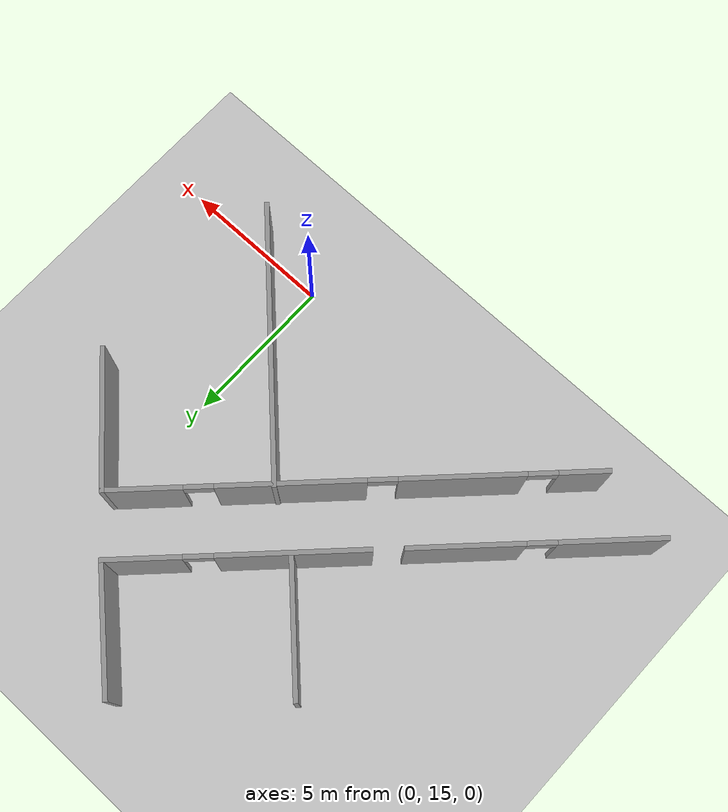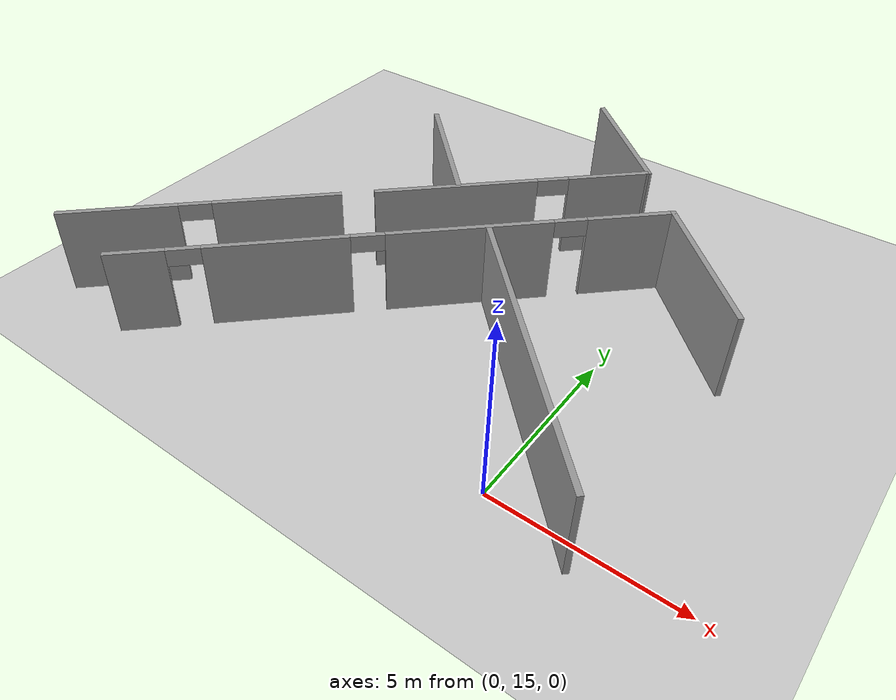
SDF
<sdf version="1.6">
 <world name="default">
  <model name="ground_plane">
   <static>1</static>
   <link name="link">
    <collision name="collision">
     <geometry><plane><normal>0 0 1</normal><size>100 100</size></plane></geometry>
     <surface>
      <contact><collide_bitmask>65535</collide_bitmask></contact>
      <friction><ode><mu>100</mu><mu2>50</mu2></ode></friction>
     </surface>
    </collision>
    <visual name="visual">
     <cast_shadows>0</cast_shadows>
     <geometry><plane><normal>0 0 1</normal><size>100 100</size></plane></geometry>
     <material>
      <script><uri>file://media/materials/scripts/gazebo.material</uri><name>Gazebo/Grey</name></script>
     </material>
    </visual>
   </link>
  </model>
  <model name="Level_1_with_doors">
   <link name="Wall_79">
    <pose>-10.3009 -3.61838 0 0 -0 0.785398</pose>
    <visual name="Wall_79_Visual_5">
     <pose>-0.78351 0 2.25 0 -0 0</pose>
     <geometry><box><size>0.9 0.15 0.5</size></box></geometry>
     <material>
      <script><uri>file://media/materials/scripts/gazebo.material</uri><name>Gazebo/Grey</name></script>
      <ambient>1 1 1 1</ambient>
      <shader type="pixel"/>
     </material>
     <meta><layer>0</layer></meta>
    </visual>
    <visual name="Wall_79_Visual_3">
     <pose>6.28016 0 1.25 0 -0 0</pose>
     <geometry><box><size>2.43968 0.15 2.5</size></box></geometry>
     <material>
      <script><uri>file://media/materials/scripts/gazebo.material</uri><name>Gazebo/Grey</name></script>
      <ambient>1 1 1 1</ambient>
      <shader type="pixel"/>
     </material>
     <meta><layer>0</layer></meta>
    </visual>
    <visual name="Wall_79_Visual_2">
     <pose>1.91341 0 1.25 0 -0 0</pose>
     <geometry><box><size>4.49383 0.15 2.5</size></box></geometry>
     <material>
      <script><uri>file://media/materials/scripts/gazebo.material</uri><name>Gazebo/Grey</name></script>
      <ambient>1 1 1 1</ambient>
      <shader type="pixel"/>
     </material>
     <meta><layer>0</layer></meta>
    </visual>
    <visual name="Wall_79_Visual_6">
     <pose>4.61032 0 2.25 0 -0 0</pose>
     <geometry><box><size>0.9 0.15 0.5</size></box></geometry>
     <material>
      <script><uri>file://media/materials/scripts/gazebo.material</uri><name>Gazebo/Grey</name></script>
      <ambient>1 1 1 1</ambient>
      <shader type="pixel"/>
     </material>
     <meta><layer>0</layer></meta>
    </visual>
    <visual name="Wall_79_Visual_1">
     <pose>-3.13297 0 1.25 0 -0 0</pose>
     <geometry><box><size>3.79891 0.15 2.5</size></box></geometry>
     <material>
      <script><uri>file://media/materials/scripts/gazebo.material</uri><name>Gazebo/Grey</name></script>
      <ambient>1 1 1 1</ambient>
      <shader type="pixel"/>
     </material>
     <meta><layer>0</layer></meta>
    </visual>
    <visual name="Wall_79_Visual_0">
     <pose>-6.71621 0 1.25 0 -0 0</pose>
     <geometry><box><size>1.56758 0.15 2.5</size></box></geometry>
     <material>
      <script><uri>file://media/materials/scripts/gazebo.material</uri><name>Gazebo/Grey</name></script>
      <ambient>1 1 1 1</ambient>
      <shader type="pixel"/>
     </material>
     <meta><layer>0</layer></meta>
    </visual>
    <visual name="Wall_79_Visual_4">
     <pose>-5.48242 0 2.25 0 -0 0</pose>
     <geometry><box><size>0.9 0.15 0.5</size></box></geometry>
     <material>
      <script><uri>file://media/materials/scripts/gazebo.material</uri><name>Gazebo/Grey</name></script>
      <ambient>1 1 1 1</ambient>
      <shader type="pixel"/>
     </material>
     <meta><layer>0</layer></meta>
    </visual>
    <collision name="Wall_79_Collision_0">
     <pose>-6.71621 0 1.25 0 -0 0</pose>
     <geometry><box><size>1.56758 0.15 2.5</size></box></geometry>
     <surface>
      <friction>
       <ode><mu>1</mu><mu2>1</mu2><fdir1>0 0 0</fdir1><slip1>0</slip1><slip2>0</slip2></ode>
       <torsional>
        <coefficient>1</coefficient>
        <patch_radius>0</patch_radius>
        <surface_radius>0</surface_radius>
        <use_patch_radius>1</use_patch_radius>
        <ode><slip>0</slip></ode>
       </torsional>
      </friction>
      <bounce><restitution_coefficient>0</restitution_coefficient><threshold>1e+06</threshold></bounce>
      <contact>
       <collide_without_contact>0</collide_without_contact>
       <collide_without_contact_bitmask>1</collide_without_contact_bitmask>
       <collide_bitmask>1</collide_bitmask>
       <ode>
        <soft_cfm>0</soft_cfm>
        <soft_erp>0.2</soft_erp>
        <kp>1e+13</kp>
        <kd>1</kd>
        <max_vel>0.01</max_vel>
        <min_depth>0</min_depth>
       </ode>
       <bullet>
        <split_impulse>1</split_impulse>
        <split_impulse_penetration_threshold>-0.01</split_impulse_penetration_threshold>
        <soft_cfm>0</soft_cfm>
        <soft_erp>0.2</soft_erp>
        <kp>1e+13</kp>
        <kd>1</kd>
       </bullet>
      </contact>
     </surface>
    </collision>
    <collision name="Wall_79_Collision_3">
     <pose>6.28016 0 1.25 0 -0 0</pose>
     <geometry><box><size>2.43968 0.15 2.5</size></box></geometry>
     <surface>
      <friction>
       <ode><mu>1</mu><mu2>1</mu2><fdir1>0 0 0</fdir1><slip1>0</slip1><slip2>0</slip2></ode>
       <torsional>
        <coefficient>1</coefficient>
        <patch_radius>0</patch_radius>
        <surface_radius>0</surface_radius>
        <use_patch_radius>1</use_patch_radius>
        <ode><slip>0</slip></ode>
       </torsional>
      </friction>
      <bounce><restitution_coefficient>0</restitution_coefficient><threshold>1e+06</threshold></bounce>
      <contact>
       <collide_without_contact>0</collide_without_contact>
       <collide_without_contact_bitmask>1</collide_without_contact_bitmask>
       <collide_bitmask>1</collide_bitmask>
       <ode>
        <soft_cfm>0</soft_cfm>
        <soft_erp>0.2</soft_erp>
        <kp>1e+13</kp>
        <kd>1</kd>
        <max_vel>0.01</max_vel>
        <min_depth>0</min_depth>
       </ode>
       <bullet>
        <split_impulse>1</split_impulse>
        <split_impulse_penetration_threshold>-0.01</split_impulse_penetration_threshold>
        <soft_cfm>0</soft_cfm>
        <soft_erp>0.2</soft_erp>
        <kp>1e+13</kp>
        <kd>1</kd>
       </bullet>
      </contact>
     </surface>
    </collision>
    <collision name="Wall_79_Collision_2">
     <pose>1.91341 0 1.25 0 -0 0</pose>
     <geometry><box><size>4.49383 0.15 2.5</size></box></geometry>
     <surface>
      <friction>
       <ode><mu>1</mu><mu2>1</mu2><fdir1>0 0 0</fdir1><slip1>0</slip1><slip2>0</slip2></ode>
       <torsional>
        <coefficient>1</coefficient>
        <patch_radius>0</patch_radius>
        <surface_radius>0</surface_radius>
        <use_patch_radius>1</use_patch_radius>
        <ode><slip>0</slip></ode>
       </torsional>
      </friction>
      <bounce><restitution_coefficient>0</restitution_coefficient><threshold>1e+06</threshold></bounce>
      <contact>
       <collide_without_contact>0</collide_without_contact>
       <collide_without_contact_bitmask>1</collide_without_contact_bitmask>
       <collide_bitmask>1</collide_bitmask>
       <ode>
        <soft_cfm>0</soft_cfm>
        <soft_erp>0.2</soft_erp>
        <kp>1e+13</kp>
        <kd>1</kd>
        <max_vel>0.01</max_vel>
        <min_depth>0</min_depth>
       </ode>
       <bullet>
        <split_impulse>1</split_impulse>
        <split_impulse_penetration_threshold>-0.01</split_impulse_penetration_threshold>
        <soft_cfm>0</soft_cfm>
        <soft_erp>0.2</soft_erp>
        <kp>1e+13</kp>
        <kd>1</kd>
       </bullet>
      </contact>
     </surface>
    </collision>
    <collision name="Wall_79_Collision_1">
     <pose>-3.13297 0 1.25 0 -0 0</pose>
     <geometry><box><size>3.79891 0.15 2.5</size></box></geometry>
     <surface>
      <friction>
       <ode><mu>1</mu><mu2>1</mu2><fdir1>0 0 0</fdir1><slip1>0</slip1><slip2>0</slip2></ode>
       <torsional>
        <coefficient>1</coefficient>
        <patch_radius>0</patch_radius>
        <surface_radius>0</surface_radius>
        <use_patch_radius>1</use_patch_radius>
        <ode><slip>0</slip></ode>
       </torsional>
      </friction>
      <bounce><restitution_coefficient>0</restitution_coefficient><threshold>1e+06</threshold></bounce>
      <contact>
       <collide_without_contact>0</collide_without_contact>
       <collide_without_contact_bitmask>1</collide_without_contact_bitmask>
       <collide_bitmask>1</collide_bitmask>
       <ode>
        <soft_cfm>0</soft_cfm>
        <soft_erp>0.2</soft_erp>
        <kp>1e+13</kp>
        <kd>1</kd>
        <max_vel>0.01</max_vel>
        <min_depth>0</min_depth>
       </ode>
       <bullet>
        <split_impulse>1</split_impulse>
        <split_impulse_penetration_threshold>-0.01</split_impulse_penetration_threshold>
        <soft_cfm>0</soft_cfm>
        <soft_erp>0.2</soft_erp>
        <kp>1e+13</kp>
        <kd>1</kd>
       </bullet>
      </contact>
     </surface>
    </collision>
    <collision name="Wall_79_Collision_4">
     <pose>-5.48242 0 2.25 0 -0 0</pose>
     <geometry><box><size>0.9 0.15 0.5</size></box></geometry>
     <surface>
      <friction>
       <ode><mu>1</mu><mu2>1</mu2><fdir1>0 0 0</fdir1><slip1>0</slip1><slip2>0</slip2></ode>
       <torsional>
        <coefficient>1</coefficient>
        <patch_radius>0</patch_radius>
        <surface_radius>0</surface_radius>
        <use_patch_radius>1</use_patch_radius>
        <ode><slip>0</slip></ode>
       </torsional>
      </friction>
      <bounce><restitution_coefficient>0</restitution_coefficient><threshold>1e+06</threshold></bounce>
      <contact>
       <collide_without_contact>0</collide_without_contact>
       <collide_without_contact_bitmask>1</collide_without_contact_bitmask>
       <collide_bitmask>1</collide_bitmask>
       <ode>
        <soft_cfm>0</soft_cfm>
        <soft_erp>0.2</soft_erp>
        <kp>1e+13</kp>
        <kd>1</kd>
        <max_vel>0.01</max_vel>
        <min_depth>0</min_depth>
       </ode>
       <bullet>
        <split_impulse>1</split_impulse>
        <split_impulse_penetration_threshold>-0.01</split_impulse_penetration_threshold>
        <soft_cfm>0</soft_cfm>
        <soft_erp>0.2</soft_erp>
        <kp>1e+13</kp>
        <kd>1</kd>
       </bullet>
      </contact>
     </surface>
    </collision>
    <collision name="Wall_79_Collision_6">
     <pose>4.61032 0 2.25 0 -0 0</pose>
     <geometry><box><size>0.9 0.15 0.5</size></box></geometry>
     <surface>
      <friction>
       <ode><mu>1</mu><mu2>1</mu2><fdir1>0 0 0</fdir1><slip1>0</slip1><slip2>0</slip2></ode>
       <torsional>
        <coefficient>1</coefficient>
        <patch_radius>0</patch_radius>
        <surface_radius>0</surface_radius>
        <use_patch_radius>1</use_patch_radius>
        <ode><slip>0</slip></ode>
       </torsional>
      </friction>
      <bounce><restitution_coefficient>0</restitution_coefficient><threshold>1e+06</threshold></bounce>
      <contact>
       <collide_without_contact>0</collide_without_contact>
       <collide_without_contact_bitmask>1</collide_without_contact_bitmask>
       <collide_bitmask>1</collide_bitmask>
       <ode>
        <soft_cfm>0</soft_cfm>
        <soft_erp>0.2</soft_erp>
        <kp>1e+13</kp>
        <kd>1</kd>
        <max_vel>0.01</max_vel>
        <min_depth>0</min_depth>
       </ode>
       <bullet>
        <split_impulse>1</split_impulse>
        <split_impulse_penetration_threshold>-0.01</split_impulse_penetration_threshold>
        <soft_cfm>0</soft_cfm>
        <soft_erp>0.2</soft_erp>
        <kp>1e+13</kp>
        <kd>1</kd>
       </bullet>
      </contact>
     </surface>
    </collision>
    <collision name="Wall_79_Collision_5">
     <pose>-0.78351 0 2.25 0 -0 0</pose>
     <geometry><box><size>0.9 0.15 0.5</size></box></geometry>
     <surface>
      <friction>
       <ode><mu>1</mu><mu2>1</mu2><fdir1>0 0 0</fdir1><slip1>0</slip1><slip2>0</slip2></ode>
       <torsional>
        <coefficient>1</coefficient>
        <patch_radius>0</patch_radius>
        <surface_radius>0</surface_radius>
        <use_patch_radius>1</use_patch_radius>
        <ode><slip>0</slip></ode>
       </torsional>
      </friction>
      <bounce><restitution_coefficient>0</restitution_coefficient><threshold>1e+06</threshold></bounce>
      <contact>
       <collide_without_contact>0</collide_without_contact>
       <collide_without_contact_bitmask>1</collide_without_contact_bitmask>
       <collide_bitmask>1</collide_bitmask>
       <ode>
        <soft_cfm>0</soft_cfm>
        <soft_erp>0.2</soft_erp>
        <kp>1e+13</kp>
        <kd>1</kd>
        <max_vel>0.01</max_vel>
        <min_depth>0</min_depth>
       </ode>
       <bullet>
        <split_impulse>1</split_impulse>
        <split_impulse_penetration_threshold>-0.01</split_impulse_penetration_threshold>
        <soft_cfm>0</soft_cfm>
        <soft_erp>0.2</soft_erp>
        <kp>1e+13</kp>
        <kd>1</kd>
       </bullet>
      </contact>
     </surface>
    </collision>
   </link>
   <link name="Wall_80">
    <pose>-3.5127 0.093925 0 0 0 -0.785398</pose>
    <visual name="Wall_80_Visual">
     <pose>0 0 1.25 0 -0 0</pose>
     <geometry><box><size>4.5 0.15 2.5</size></box></geometry>
     <material>
      <script><uri>file://media/materials/scripts/gazebo.material</uri><name>Gazebo/Grey</name></script>
      <ambient>1 1 1 1</ambient>
      <shader type="pixel"/>
     </material>
     <meta><layer>0</layer></meta>
    </visual>
    <collision name="Wall_80_Collision">
     <pose>0 0 1.25 0 -0 0</pose>
     <geometry><box><size>4.5 0.15 2.5</size></box></geometry>
     <surface>
      <friction>
       <ode><mu>1</mu><mu2>1</mu2><fdir1>0 0 0</fdir1><slip1>0</slip1><slip2>0</slip2></ode>
       <torsional>
        <coefficient>1</coefficient>
        <patch_radius>0</patch_radius>
        <surface_radius>0</surface_radius>
        <use_patch_radius>1</use_patch_radius>
        <ode><slip>0</slip></ode>
       </torsional>
      </friction>
      <bounce><restitution_coefficient>0</restitution_coefficient><threshold>1e+06</threshold></bounce>
      <contact>
       <collide_without_contact>0</collide_without_contact>
       <collide_without_contact_bitmask>1</collide_without_contact_bitmask>
       <collide_bitmask>1</collide_bitmask>
       <ode>
        <soft_cfm>0</soft_cfm>
        <soft_erp>0.2</soft_erp>
        <kp>1e+13</kp>
        <kd>1</kd>
        <max_vel>0.01</max_vel>
        <min_depth>0</min_depth>
       </ode>
       <bullet>
        <split_impulse>1</split_impulse>
        <split_impulse_penetration_threshold>-0.01</split_impulse_penetration_threshold>
        <soft_cfm>0</soft_cfm>
        <soft_erp>0.2</soft_erp>
        <kp>1e+13</kp>
        <kd>1</kd>
       </bullet>
      </contact>
     </surface>
    </collision>
   </link>
   <link name="Wall_88">
    <pose>-7.9432 4.42462 0 0 0 -0.749308</pose>
    <visual name="Wall_88_Visual">
     <pose>0 0 1.25 0 -0 0</pose>
     <geometry><box><size>4.0917 0.15 2.5</size></box></geometry>
     <material>
      <script><uri>file://media/materials/scripts/gazebo.material</uri><name>Gazebo/Grey</name></script>
      <ambient>1 1 1 1</ambient>
      <shader type="pixel"/>
     </material>
     <meta><layer>0</layer></meta>
    </visual>
    <collision name="Wall_88_Collision">
     <pose>0 0 1.25 0 -0 0</pose>
     <geometry><box><size>4.0917 0.15 2.5</size></box></geometry>
     <surface>
      <friction>
       <ode><mu>1</mu><mu2>1</mu2><fdir1>0 0 0</fdir1><slip1>0</slip1><slip2>0</slip2></ode>
       <torsional>
        <coefficient>1</coefficient>
        <patch_radius>0</patch_radius>
        <surface_radius>0</surface_radius>
        <use_patch_radius>1</use_patch_radius>
        <ode><slip>0</slip></ode>
       </torsional>
      </friction>
      <bounce><restitution_coefficient>0</restitution_coefficient><threshold>1e+06</threshold></bounce>
      <contact>
       <collide_without_contact>0</collide_without_contact>
       <collide_without_contact_bitmask>1</collide_without_contact_bitmask>
       <collide_bitmask>1</collide_bitmask>
       <ode>
        <soft_cfm>0</soft_cfm>
        <soft_erp>0.2</soft_erp>
        <kp>1e+13</kp>
        <kd>1</kd>
        <max_vel>0.01</max_vel>
        <min_depth>0</min_depth>
       </ode>
       <bullet>
        <split_impulse>1</split_impulse>
        <split_impulse_penetration_threshold>-0.01</split_impulse_penetration_threshold>
        <soft_cfm>0</soft_cfm>
        <soft_erp>0.2</soft_erp>
        <kp>1e+13</kp>
        <kd>1</kd>
       </bullet>
      </contact>
     </surface>
    </collision>
   </link>
   <link name="Wall_89">
    <pose>-12.2808 -2.69839 0 0 0 -2.35619</pose>
    <visual name="Wall_89_Visual_1">
     <pose>-2.63849 0 1.25 0 -0 0</pose>
     <geometry><box><size>4.60665 0.15 2.5</size></box></geometry>
     <material>
      <script><uri>file://media/materials/scripts/gazebo.material</uri><name>Gazebo/Grey</name></script>
      <ambient>1 1 1 1</ambient>
      <shader type="pixel"/>
     </material>
     <meta><layer>0</layer></meta>
    </visual>
    <visual name="Wall_89_Visual_0">
     <pose>-7.04591 0 1.25 0 -0 0</pose>
     <geometry><box><size>2.40819 0.15 2.5</size></box></geometry>
     <material>
      <script><uri>file://media/materials/scripts/gazebo.material</uri><name>Gazebo/Grey</name></script>
      <ambient>1 1 1 1</ambient>
      <shader type="pixel"/>
     </material>
     <meta><layer>0</layer></meta>
    </visual>
    <visual name="Wall_89_Visual_2">
     <pose>2.33222 0 1.25 0 -0 0</pose>
     <geometry><box><size>3.53475 0.15 2.5</size></box></geometry>
     <material>
      <script><uri>file://media/materials/scripts/gazebo.material</uri><name>Gazebo/Grey</name></script>
      <ambient>1 1 1 1</ambient>
      <shader type="pixel"/>
     </material>
     <meta><layer>0</layer></meta>
    </visual>
    <visual name="Wall_89_Visual_3">
     <pose>6.6248 0 1.25 0 -0 0</pose>
     <geometry><box><size>3.25041 0.15 2.5</size></box></geometry>
     <material>
      <script><uri>file://media/materials/scripts/gazebo.material</uri><name>Gazebo/Grey</name></script>
      <ambient>1 1 1 1</ambient>
      <shader type="pixel"/>
     </material>
     <meta><layer>0</layer></meta>
    </visual>
    <visual name="Wall_89_Visual_4">
     <pose>-5.39181 0 2.25 0 -0 0</pose>
     <geometry><box><size>0.9 0.15 0.5</size></box></geometry>
     <material>
      <script><uri>file://media/materials/scripts/gazebo.material</uri><name>Gazebo/Grey</name></script>
      <ambient>1 1 1 1</ambient>
      <shader type="pixel"/>
     </material>
     <meta><layer>0</layer></meta>
    </visual>
    <visual name="Wall_89_Visual_5">
     <pose>-0.335158 0 2.25 0 -0 0</pose>
     <geometry><box><size>0 0.15 0.5</size></box></geometry>
     <material>
      <script><uri>file://media/materials/scripts/gazebo.material</uri><name>Gazebo/Grey</name></script>
      <ambient>1 1 1 1</ambient>
      <shader type="pixel"/>
     </material>
     <meta><layer>0</layer></meta>
    </visual>
    <visual name="Wall_89_Visual_6">
     <pose>4.54959 0 2.25 0 -0 0</pose>
     <geometry><box><size>0.9 0.15 0.5</size></box></geometry>
     <material>
      <script><uri>file://media/materials/scripts/gazebo.material</uri><name>Gazebo/Grey</name></script>
      <ambient>1 1 1 1</ambient>
      <shader type="pixel"/>
     </material>
     <meta><layer>0</layer></meta>
    </visual>
    <collision name="Wall_89_Collision_0">
     <pose>-7.04591 0 1.25 0 -0 0</pose>
     <geometry><box><size>2.40819 0.15 2.5</size></box></geometry>
     <surface>
      <friction>
       <ode><mu>1</mu><mu2>1</mu2><fdir1>0 0 0</fdir1><slip1>0</slip1><slip2>0</slip2></ode>
       <torsional>
        <coefficient>1</coefficient>
        <patch_radius>0</patch_radius>
        <surface_radius>0</surface_radius>
        <use_patch_radius>1</use_patch_radius>
        <ode><slip>0</slip></ode>
       </torsional>
      </friction>
      <bounce><restitution_coefficient>0</restitution_coefficient><threshold>1e+06</threshold></bounce>
      <contact>
       <collide_without_contact>0</collide_without_contact>
       <collide_without_contact_bitmask>1</collide_without_contact_bitmask>
       <collide_bitmask>1</collide_bitmask>
       <ode>
        <soft_cfm>0</soft_cfm>
        <soft_erp>0.2</soft_erp>
        <kp>1e+13</kp>
        <kd>1</kd>
        <max_vel>0.01</max_vel>
        <min_depth>0</min_depth>
       </ode>
       <bullet>
        <split_impulse>1</split_impulse>
        <split_impulse_penetration_threshold>-0.01</split_impulse_penetration_threshold>
        <soft_cfm>0</soft_cfm>
        <soft_erp>0.2</soft_erp>
        <kp>1e+13</kp>
        <kd>1</kd>
       </bullet>
      </contact>
     </surface>
    </collision>
    <collision name="Wall_89_Collision_1">
     <pose>-2.63849 0 1.25 0 -0 0</pose>
     <geometry><box><size>4.60665 0.15 2.5</size></box></geometry>
     <surface>
      <friction>
       <ode><mu>1</mu><mu2>1</mu2><fdir1>0 0 0</fdir1><slip1>0</slip1><slip2>0</slip2></ode>
       <torsional>
        <coefficient>1</coefficient>
        <patch_radius>0</patch_radius>
        <surface_radius>0</surface_radius>
        <use_patch_radius>1</use_patch_radius>
        <ode><slip>0</slip></ode>
       </torsional>
      </friction>
      <bounce><restitution_coefficient>0</restitution_coefficient><threshold>1e+06</threshold></bounce>
      <contact>
       <collide_without_contact>0</collide_without_contact>
       <collide_without_contact_bitmask>1</collide_without_contact_bitmask>
       <collide_bitmask>1</collide_bitmask>
       <ode>
        <soft_cfm>0</soft_cfm>
        <soft_erp>0.2</soft_erp>
        <kp>1e+13</kp>
        <kd>1</kd>
        <max_vel>0.01</max_vel>
        <min_depth>0</min_depth>
       </ode>
       <bullet>
        <split_impulse>1</split_impulse>
        <split_impulse_penetration_threshold>-0.01</split_impulse_penetration_threshold>
        <soft_cfm>0</soft_cfm>
        <soft_erp>0.2</soft_erp>
        <kp>1e+13</kp>
        <kd>1</kd>
       </bullet>
      </contact>
     </surface>
    </collision>
    <collision name="Wall_89_Collision_4">
     <pose>-5.39181 0 2.25 0 -0 0</pose>
     <geometry><box><size>0.9 0.15 0.5</size></box></geometry>
     <surface>
      <friction>
       <ode><mu>1</mu><mu2>1</mu2><fdir1>0 0 0</fdir1><slip1>0</slip1><slip2>0</slip2></ode>
       <torsional>
        <coefficient>1</coefficient>
        <patch_radius>0</patch_radius>
        <surface_radius>0</surface_radius>
        <use_patch_radius>1</use_patch_radius>
        <ode><slip>0</slip></ode>
       </torsional>
      </friction>
      <bounce><restitution_coefficient>0</restitution_coefficient><threshold>1e+06</threshold></bounce>
      <contact>
       <collide_without_contact>0</collide_without_contact>
       <collide_without_contact_bitmask>1</collide_without_contact_bitmask>
       <collide_bitmask>1</collide_bitmask>
       <ode>
        <soft_cfm>0</soft_cfm>
        <soft_erp>0.2</soft_erp>
        <kp>1e+13</kp>
        <kd>1</kd>
        <max_vel>0.01</max_vel>
        <min_depth>0</min_depth>
       </ode>
       <bullet>
        <split_impulse>1</split_impulse>
        <split_impulse_penetration_threshold>-0.01</split_impulse_penetration_threshold>
        <soft_cfm>0</soft_cfm>
        <soft_erp>0.2</soft_erp>
        <kp>1e+13</kp>
        <kd>1</kd>
       </bullet>
      </contact>
     </surface>
    </collision>
    <collision name="Wall_89_Collision_2">
     <pose>2.33222 0 1.25 0 -0 0</pose>
     <geometry><box><size>3.53475 0.15 2.5</size></box></geometry>
     <surface>
      <friction>
       <ode><mu>1</mu><mu2>1</mu2><fdir1>0 0 0</fdir1><slip1>0</slip1><slip2>0</slip2></ode>
       <torsional>
        <coefficient>1</coefficient>
        <patch_radius>0</patch_radius>
        <surface_radius>0</surface_radius>
        <use_patch_radius>1</use_patch_radius>
        <ode><slip>0</slip></ode>
       </torsional>
      </friction>
      <bounce><restitution_coefficient>0</restitution_coefficient><threshold>1e+06</threshold></bounce>
      <contact>
       <collide_without_contact>0</collide_without_contact>
       <collide_without_contact_bitmask>1</collide_without_contact_bitmask>
       <collide_bitmask>1</collide_bitmask>
       <ode>
        <soft_cfm>0</soft_cfm>
        <soft_erp>0.2</soft_erp>
        <kp>1e+13</kp>
        <kd>1</kd>
        <max_vel>0.01</max_vel>
        <min_depth>0</min_depth>
       </ode>
       <bullet>
        <split_impulse>1</split_impulse>
        <split_impulse_penetration_threshold>-0.01</split_impulse_penetration_threshold>
        <soft_cfm>0</soft_cfm>
        <soft_erp>0.2</soft_erp>
        <kp>1e+13</kp>
        <kd>1</kd>
       </bullet>
      </contact>
     </surface>
    </collision>
    <collision name="Wall_89_Collision_5">
     <pose>-0.335158 0 2.25 0 -0 0</pose>
     <geometry><box><size>0 0.15 0.5</size></box></geometry>
     <surface>
      <friction>
       <ode><mu>1</mu><mu2>1</mu2><fdir1>0 0 0</fdir1><slip1>0</slip1><slip2>0</slip2></ode>
       <torsional>
        <coefficient>1</coefficient>
        <patch_radius>0</patch_radius>
        <surface_radius>0</surface_radius>
        <use_patch_radius>1</use_patch_radius>
        <ode><slip>0</slip></ode>
       </torsional>
      </friction>
      <bounce><restitution_coefficient>0</restitution_coefficient><threshold>1e+06</threshold></bounce>
      <contact>
       <collide_without_contact>0</collide_without_contact>
       <collide_without_contact_bitmask>1</collide_without_contact_bitmask>
       <collide_bitmask>1</collide_bitmask>
       <ode>
        <soft_cfm>0</soft_cfm>
        <soft_erp>0.2</soft_erp>
        <kp>1e+13</kp>
        <kd>1</kd>
        <max_vel>0.01</max_vel>
        <min_depth>0</min_depth>
       </ode>
       <bullet>
        <split_impulse>1</split_impulse>
        <split_impulse_penetration_threshold>-0.01</split_impulse_penetration_threshold>
        <soft_cfm>0</soft_cfm>
        <soft_erp>0.2</soft_erp>
        <kp>1e+13</kp>
        <kd>1</kd>
       </bullet>
      </contact>
     </surface>
    </collision>
    <collision name="Wall_89_Collision_3">
     <pose>6.6248 0 1.25 0 -0 0</pose>
     <geometry><box><size>3.25041 0.15 2.5</size></box></geometry>
     <surface>
      <friction>
       <ode><mu>1</mu><mu2>1</mu2><fdir1>0 0 0</fdir1><slip1>0</slip1><slip2>0</slip2></ode>
       <torsional>
        <coefficient>1</coefficient>
        <patch_radius>0</patch_radius>
        <surface_radius>0</surface_radius>
        <use_patch_radius>1</use_patch_radius>
        <ode><slip>0</slip></ode>
       </torsional>
      </friction>
      <bounce><restitution_coefficient>0</restitution_coefficient><threshold>1e+06</threshold></bounce>
      <contact>
       <collide_without_contact>0</collide_without_contact>
       <collide_without_contact_bitmask>1</collide_without_contact_bitmask>
       <collide_bitmask>1</collide_bitmask>
       <ode>
        <soft_cfm>0</soft_cfm>
        <soft_erp>0.2</soft_erp>
        <kp>1e+13</kp>
        <kd>1</kd>
        <max_vel>0.01</max_vel>
        <min_depth>0</min_depth>
       </ode>
       <bullet>
        <split_impulse>1</split_impulse>
        <split_impulse_penetration_threshold>-0.01</split_impulse_penetration_threshold>
        <soft_cfm>0</soft_cfm>
        <soft_erp>0.2</soft_erp>
        <kp>1e+13</kp>
        <kd>1</kd>
       </bullet>
      </contact>
     </surface>
    </collision>
    <collision name="Wall_89_Collision_6">
     <pose>4.54959 0 2.25 0 -0 0</pose>
     <geometry><box><size>0.9 0.15 0.5</size></box></geometry>
     <surface>
      <friction>
       <ode><mu>1</mu><mu2>1</mu2><fdir1>0 0 0</fdir1><slip1>0</slip1><slip2>0</slip2></ode>
       <torsional>
        <coefficient>1</coefficient>
        <patch_radius>0</patch_radius>
        <surface_radius>0</surface_radius>
        <use_patch_radius>1</use_patch_radius>
        <ode><slip>0</slip></ode>
       </torsional>
      </friction>
      <bounce><restitution_coefficient>0</restitution_coefficient><threshold>1e+06</threshold></bounce>
      <contact>
       <collide_without_contact>0</collide_without_contact>
       <collide_without_contact_bitmask>1</collide_without_contact_bitmask>
       <collide_bitmask>1</collide_bitmask>
       <ode>
        <soft_cfm>0</soft_cfm>
        <soft_erp>0.2</soft_erp>
        <kp>1e+13</kp>
        <kd>1</kd>
        <max_vel>0.01</max_vel>
        <min_depth>0</min_depth>
       </ode>
       <bullet>
        <split_impulse>1</split_impulse>
        <split_impulse_penetration_threshold>-0.01</split_impulse_penetration_threshold>
        <soft_cfm>0</soft_cfm>
        <soft_erp>0.2</soft_erp>
        <kp>1e+13</kp>
        <kd>1</kd>
       </bullet>
      </contact>
     </surface>
    </collision>
   </link>
   <link name="Wall_93">
    <pose>-5.50653 -5.02793 0 0 0 -0.785398</pose>
    <visual name="Wall_93_Visual">
     <pose>0 0 1.25 0 -0 0</pose>
     <geometry><box><size>9 0.15 2.5</size></box></geometry>
     <material>
      <script><uri>file://media/materials/scripts/gazebo.material</uri><name>Gazebo/Grey</name></script>
      <ambient>1 1 1 1</ambient>
      <shader type="pixel"/>
     </material>
     <meta><layer>0</layer></meta>
    </visual>
    <collision name="Wall_93_Collision">
     <pose>0 0 1.25 0 -0 0</pose>
     <geometry><box><size>9 0.15 2.5</size></box></geometry>
     <surface>
      <friction>
       <ode><mu>1</mu><mu2>1</mu2><fdir1>0 0 0</fdir1><slip1>0</slip1><slip2>0</slip2></ode>
       <torsional>
        <coefficient>1</coefficient>
        <patch_radius>0</patch_radius>
        <surface_radius>0</surface_radius>
        <use_patch_radius>1</use_patch_radius>
        <ode><slip>0</slip></ode>
       </torsional>
      </friction>
      <bounce><restitution_coefficient>0</restitution_coefficient><threshold>1e+06</threshold></bounce>
      <contact>
       <collide_without_contact>0</collide_without_contact>
       <collide_without_contact_bitmask>1</collide_without_contact_bitmask>
       <collide_bitmask>1</collide_bitmask>
       <ode>
        <soft_cfm>0</soft_cfm>
        <soft_erp>0.2</soft_erp>
        <kp>1e+13</kp>
        <kd>1</kd>
        <max_vel>0.01</max_vel>
        <min_depth>0</min_depth>
       </ode>
       <bullet>
        <split_impulse>1</split_impulse>
        <split_impulse_penetration_threshold>-0.01</split_impulse_penetration_threshold>
        <soft_cfm>0</soft_cfm>
        <soft_erp>0.2</soft_erp>
        <kp>1e+13</kp>
        <kd>1</kd>
       </bullet>
      </contact>
     </surface>
    </collision>
   </link>
   <link name="Wall_97">
    <pose>-11.8822 0.723581 0 0 0 -0.785398</pose>
    <visual name="Wall_97_Visual">
     <pose>0 0 1.25 0 -0 0</pose>
     <geometry><box><size>4.25 0.15 2.5</size></box></geometry>
     <material>
      <script><uri>file://media/materials/scripts/gazebo.material</uri><name>Gazebo/Grey</name></script>
      <ambient>1 1 1 1</ambient>
      <shader type="pixel"/>
     </material>
     <meta><layer>0</layer></meta>
    </visual>
    <collision name="Wall_97_Collision">
     <pose>0 0 1.25 0 -0 0</pose>
     <geometry><box><size>4.25 0.15 2.5</size></box></geometry>
     <surface>
      <friction>
       <ode><mu>1</mu><mu2>1</mu2><fdir1>0 0 0</fdir1><slip1>0</slip1><slip2>0</slip2></ode>
       <torsional>
        <coefficient>1</coefficient>
        <patch_radius>0</patch_radius>
        <surface_radius>0</surface_radius>
        <use_patch_radius>1</use_patch_radius>
        <ode><slip>0</slip></ode>
       </torsional>
      </friction>
      <bounce><restitution_coefficient>0</restitution_coefficient><threshold>1e+06</threshold></bounce>
      <contact>
       <collide_without_contact>0</collide_without_contact>
       <collide_without_contact_bitmask>1</collide_without_contact_bitmask>
       <collide_bitmask>1</collide_bitmask>
       <ode>
        <soft_cfm>0</soft_cfm>
        <soft_erp>0.2</soft_erp>
        <kp>1e+13</kp>
        <kd>1</kd>
        <max_vel>0.01</max_vel>
        <min_depth>0</min_depth>
       </ode>
       <bullet>
        <split_impulse>1</split_impulse>
        <split_impulse_penetration_threshold>-0.01</split_impulse_penetration_threshold>
        <soft_cfm>0</soft_cfm>
        <soft_erp>0.2</soft_erp>
        <kp>1e+13</kp>
        <kd>1</kd>
       </bullet>
      </contact>
     </surface>
    </collision>
   </link>
   <static>1</static>
   <pose>4.79959 22.5424 0 0 -0 0</pose>
  </model>
 </world>
</sdf>
